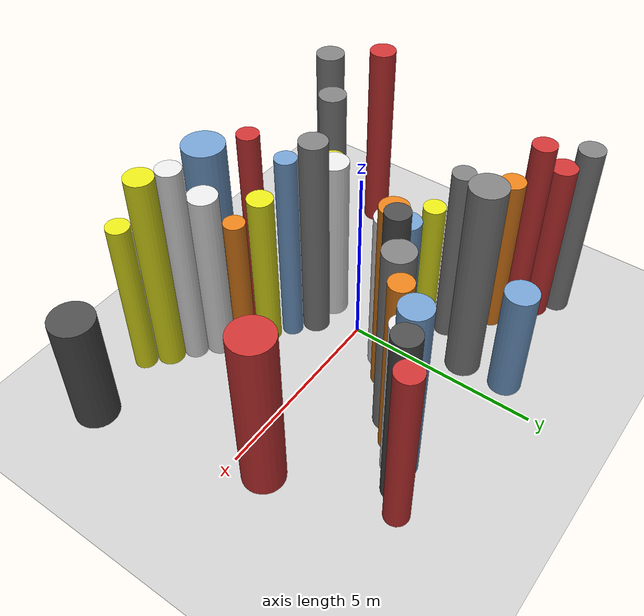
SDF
<?xml version='1.0'?>
<sdf version='1.6'>
  <world name='routeA_rl_v1__dense_recovery__rl_val__bottleneck_corridor__000029'>
    <!-- Sun light -->
    <light name='sun' type='directional'>
      <cast_shadows>1</cast_shadows>
      <pose>0 0 10 0 0 0</pose>
      <diffuse>0.8 0.8 0.8 1</diffuse>
      <specular>0.2 0.2 0.2 1</specular>
      <attenuation>
        <range>1000</range>
        <constant>0.9</constant>
        <linear>0.01</linear>
        <quadratic>0.001</quadratic>
      </attenuation>
      <direction>-0.5 0.1 -0.9</direction>
    </light>

    <!-- Ground plane -->
    <model name='ground_plane'>
      <static>1</static>
      <link name='link'>
        <collision name='collision'>
          <geometry>
            <plane>
              <normal>0 0 1</normal>
              <size>100 100</size>
            </plane>
          </geometry>
          <surface>
            <contact>
              <collide_bitmask>65535</collide_bitmask>
              <ode/>
            </contact>
            <friction>
              <ode>
                <mu>100</mu>
                <mu2>50</mu2>
              </ode>
              <torsional><ode/></torsional>
            </friction>
            <bounce/>
          </surface>
          <max_contacts>10</max_contacts>
        </collision>
        <visual name='visual'>
          <cast_shadows>0</cast_shadows>
          <geometry>
            <plane>
              <normal>0 0 1</normal>
              <size>100 100</size>
            </plane>
          </geometry>
          <material>
            <script>
              <uri>file://media/materials/scripts/gazebo.material</uri>
              <n>Gazebo/Grey</n>
            </script>
          </material>
        </visual>
      </link>
    </model>

    <!-- Environment -->
    <magnetic_field>6e-06 2.3e-05 -4.2e-05</magnetic_field>
    <atmosphere type='adiabatic'/>
    <physics name='default_physics' default='0' type='ode'>
      <gravity>0 0 -9.8</gravity>
      <max_step_size>0.004</max_step_size>
      <real_time_factor>1</real_time_factor>
      <real_time_update_rate>250</real_time_update_rate>
    </physics>
    <scene>
      <ambient>0.4 0.4 0.4 1</ambient>
      <background>0.7 0.7 0.7 1</background>
      <shadows>1</shadows>
    </scene>
    <wind/>
    <spherical_coordinates>
      <surface_model>EARTH_WGS84</surface_model>
      <latitude_deg>0</latitude_deg>
      <longitude_deg>0</longitude_deg>
      <elevation>0</elevation>
      <heading_deg>0</heading_deg>
    </spherical_coordinates>

    <!-- ============ OBSTACLES (40) ============ -->
    <model name='funnel_l_0'>
      <static>1</static>
      <link name='link'>
        <visual name='visual'>
          <geometry>
            <cylinder>
              <radius>0.2762</radius>
              <length>4.2920</length>
            </cylinder>
          </geometry>
          <material>
            <script>
              <n>Gazebo/DarkGrey</n>
              <uri>file://media/materials/scripts/gazebo.material</uri>
            </script>
            <ambient>0.3 0.3 0.3 1</ambient>
          </material>
        </visual>
        <collision name='collision'>
          <geometry>
            <cylinder>
              <radius>0.2762</radius>
              <length>4.2920</length>
            </cylinder>
          </geometry>
          <max_contacts>10</max_contacts>
          <surface>
            <contact><ode/></contact>
            <bounce/>
            <friction>
              <ode><mu>1</mu><mu2>1</mu2></ode>
              <torsional><ode/></torsional>
            </friction>
          </surface>
        </collision>
      </link>
      <pose>-4.0000 -3.8000 2.1460 0 0 0.0000</pose>
    </model>

    <model name='funnel_r_0'>
      <static>1</static>
      <link name='link'>
        <visual name='visual'>
          <geometry>
            <cylinder>
              <radius>0.3330</radius>
              <length>5.1272</length>
            </cylinder>
          </geometry>
          <material>
            <script>
              <n>Gazebo/Grey</n>
              <uri>file://media/materials/scripts/gazebo.material</uri>
            </script>
            <ambient>0.5 0.5 0.5 1</ambient>
          </material>
        </visual>
        <collision name='collision'>
          <geometry>
            <cylinder>
              <radius>0.3330</radius>
              <length>5.1272</length>
            </cylinder>
          </geometry>
          <max_contacts>10</max_contacts>
          <surface>
            <contact><ode/></contact>
            <bounce/>
            <friction>
              <ode><mu>1</mu><mu2>1</mu2></ode>
              <torsional><ode/></torsional>
            </friction>
          </surface>
        </collision>
      </link>
      <pose>-4.0000 3.8000 2.5636 0 0 0.0000</pose>
    </model>

    <model name='funnel_l_1'>
      <static>1</static>
      <link name='link'>
        <visual name='visual'>
          <geometry>
            <cylinder>
              <radius>0.2788</radius>
              <length>4.6956</length>
            </cylinder>
          </geometry>
          <material>
            <script>
              <n>Gazebo/Grey</n>
              <uri>file://media/materials/scripts/gazebo.material</uri>
            </script>
            <ambient>0.5 0.5 0.5 1</ambient>
          </material>
        </visual>
        <collision name='collision'>
          <geometry>
            <cylinder>
              <radius>0.2788</radius>
              <length>4.6956</length>
            </cylinder>
          </geometry>
          <max_contacts>10</max_contacts>
          <surface>
            <contact><ode/></contact>
            <bounce/>
            <friction>
              <ode><mu>1</mu><mu2>1</mu2></ode>
              <torsional><ode/></torsional>
            </friction>
          </surface>
        </collision>
      </link>
      <pose>-3.4857 -3.4071 2.3478 0 0 0.0000</pose>
    </model>

    <model name='funnel_r_1'>
      <static>1</static>
      <link name='link'>
        <visual name='visual'>
          <geometry>
            <cylinder>
              <radius>0.3372</radius>
              <length>4.7500</length>
            </cylinder>
          </geometry>
          <material>
            <script>
              <n>Gazebo/Red</n>
              <uri>file://media/materials/scripts/gazebo.material</uri>
            </script>
            <ambient>0.8 0.2 0.2 1</ambient>
          </material>
        </visual>
        <collision name='collision'>
          <geometry>
            <cylinder>
              <radius>0.3372</radius>
              <length>4.7500</length>
            </cylinder>
          </geometry>
          <max_contacts>10</max_contacts>
          <surface>
            <contact><ode/></contact>
            <bounce/>
            <friction>
              <ode><mu>1</mu><mu2>1</mu2></ode>
              <torsional><ode/></torsional>
            </friction>
          </surface>
        </collision>
      </link>
      <pose>-3.4857 3.4071 2.3750 0 0 0.0000</pose>
    </model>

    <model name='funnel_l_2'>
      <static>1</static>
      <link name='link'>
        <visual name='visual'>
          <geometry>
            <cylinder>
              <radius>0.3627</radius>
              <length>5.8204</length>
            </cylinder>
          </geometry>
          <material>
            <script>
              <n>Gazebo/Grey</n>
              <uri>file://media/materials/scripts/gazebo.material</uri>
            </script>
            <ambient>0.5 0.5 0.5 1</ambient>
          </material>
        </visual>
        <collision name='collision'>
          <geometry>
            <cylinder>
              <radius>0.3627</radius>
              <length>5.8204</length>
            </cylinder>
          </geometry>
          <max_contacts>10</max_contacts>
          <surface>
            <contact><ode/></contact>
            <bounce/>
            <friction>
              <ode><mu>1</mu><mu2>1</mu2></ode>
              <torsional><ode/></torsional>
            </friction>
          </surface>
        </collision>
      </link>
      <pose>-2.9714 -3.0143 2.9102 0 0 0.0000</pose>
    </model>

    <model name='funnel_r_2'>
      <static>1</static>
      <link name='link'>
        <visual name='visual'>
          <geometry>
            <cylinder>
              <radius>0.3050</radius>
              <length>5.5406</length>
            </cylinder>
          </geometry>
          <material>
            <script>
              <n>Gazebo/Red</n>
              <uri>file://media/materials/scripts/gazebo.material</uri>
            </script>
            <ambient>0.8 0.2 0.2 1</ambient>
          </material>
        </visual>
        <collision name='collision'>
          <geometry>
            <cylinder>
              <radius>0.3050</radius>
              <length>5.5406</length>
            </cylinder>
          </geometry>
          <max_contacts>10</max_contacts>
          <surface>
            <contact><ode/></contact>
            <bounce/>
            <friction>
              <ode><mu>1</mu><mu2>1</mu2></ode>
              <torsional><ode/></torsional>
            </friction>
          </surface>
        </collision>
      </link>
      <pose>-2.9714 3.0143 2.7703 0 0 0.0000</pose>
    </model>

    <model name='funnel_l_3'>
      <static>1</static>
      <link name='link'>
        <visual name='visual'>
          <geometry>
            <cylinder>
              <radius>0.3106</radius>
              <length>4.1900</length>
            </cylinder>
          </geometry>
          <material>
            <script>
              <n>Gazebo/Red</n>
              <uri>file://media/materials/scripts/gazebo.material</uri>
            </script>
            <ambient>0.8 0.2 0.2 1</ambient>
          </material>
        </visual>
        <collision name='collision'>
          <geometry>
            <cylinder>
              <radius>0.3106</radius>
              <length>4.1900</length>
            </cylinder>
          </geometry>
          <max_contacts>10</max_contacts>
          <surface>
            <contact><ode/></contact>
            <bounce/>
            <friction>
              <ode><mu>1</mu><mu2>1</mu2></ode>
              <torsional><ode/></torsional>
            </friction>
          </surface>
        </collision>
      </link>
      <pose>-2.4571 -2.6214 2.0950 0 0 0.0000</pose>
    </model>

    <model name='funnel_r_3'>
      <static>1</static>
      <link name='link'>
        <visual name='visual'>
          <geometry>
            <cylinder>
              <radius>0.3161</radius>
              <length>4.6233</length>
            </cylinder>
          </geometry>
          <material>
            <script>
              <n>Gazebo/Orange</n>
              <uri>file://media/materials/scripts/gazebo.material</uri>
            </script>
            <ambient>0.9 0.5 0.1 1</ambient>
          </material>
        </visual>
        <collision name='collision'>
          <geometry>
            <cylinder>
              <radius>0.3161</radius>
              <length>4.6233</length>
            </cylinder>
          </geometry>
          <max_contacts>10</max_contacts>
          <surface>
            <contact><ode/></contact>
            <bounce/>
            <friction>
              <ode><mu>1</mu><mu2>1</mu2></ode>
              <torsional><ode/></torsional>
            </friction>
          </surface>
        </collision>
      </link>
      <pose>-2.4571 2.6214 2.3117 0 0 0.0000</pose>
    </model>

    <model name='funnel_l_4'>
      <static>1</static>
      <link name='link'>
        <visual name='visual'>
          <geometry>
            <cylinder>
              <radius>0.2858</radius>
              <length>4.8805</length>
            </cylinder>
          </geometry>
          <material>
            <script>
              <n>Gazebo/Orange</n>
              <uri>file://media/materials/scripts/gazebo.material</uri>
            </script>
            <ambient>0.9 0.5 0.1 1</ambient>
          </material>
        </visual>
        <collision name='collision'>
          <geometry>
            <cylinder>
              <radius>0.2858</radius>
              <length>4.8805</length>
            </cylinder>
          </geometry>
          <max_contacts>10</max_contacts>
          <surface>
            <contact><ode/></contact>
            <bounce/>
            <friction>
              <ode><mu>1</mu><mu2>1</mu2></ode>
              <torsional><ode/></torsional>
            </friction>
          </surface>
        </collision>
      </link>
      <pose>-1.9429 -2.2286 2.4403 0 0 0.0000</pose>
    </model>

    <model name='funnel_r_4'>
      <static>1</static>
      <link name='link'>
        <visual name='visual'>
          <geometry>
            <cylinder>
              <radius>0.3298</radius>
              <length>4.4016</length>
            </cylinder>
          </geometry>
          <material>
            <script>
              <n>Gazebo/Red</n>
              <uri>file://media/materials/scripts/gazebo.material</uri>
            </script>
            <ambient>0.8 0.2 0.2 1</ambient>
          </material>
        </visual>
        <collision name='collision'>
          <geometry>
            <cylinder>
              <radius>0.3298</radius>
              <length>4.4016</length>
            </cylinder>
          </geometry>
          <max_contacts>10</max_contacts>
          <surface>
            <contact><ode/></contact>
            <bounce/>
            <friction>
              <ode><mu>1</mu><mu2>1</mu2></ode>
              <torsional><ode/></torsional>
            </friction>
          </surface>
        </collision>
      </link>
      <pose>-1.9429 2.2286 2.2008 0 0 0.0000</pose>
    </model>

    <model name='funnel_l_5'>
      <static>1</static>
      <link name='link'>
        <visual name='visual'>
          <geometry>
            <cylinder>
              <radius>0.3397</radius>
              <length>5.8529</length>
            </cylinder>
          </geometry>
          <material>
            <script>
              <n>Gazebo/Grey</n>
              <uri>file://media/materials/scripts/gazebo.material</uri>
            </script>
            <ambient>0.5 0.5 0.5 1</ambient>
          </material>
        </visual>
        <collision name='collision'>
          <geometry>
            <cylinder>
              <radius>0.3397</radius>
              <length>5.8529</length>
            </cylinder>
          </geometry>
          <max_contacts>10</max_contacts>
          <surface>
            <contact><ode/></contact>
            <bounce/>
            <friction>
              <ode><mu>1</mu><mu2>1</mu2></ode>
              <torsional><ode/></torsional>
            </friction>
          </surface>
        </collision>
      </link>
      <pose>-1.4286 -1.8357 2.9265 0 0 0.0000</pose>
    </model>

    <model name='funnel_r_5'>
      <static>1</static>
      <link name='link'>
        <visual name='visual'>
          <geometry>
            <cylinder>
              <radius>0.2864</radius>
              <length>5.1683</length>
            </cylinder>
          </geometry>
          <material>
            <script>
              <n>Gazebo/Grey</n>
              <uri>file://media/materials/scripts/gazebo.material</uri>
            </script>
            <ambient>0.5 0.5 0.5 1</ambient>
          </material>
        </visual>
        <collision name='collision'>
          <geometry>
            <cylinder>
              <radius>0.2864</radius>
              <length>5.1683</length>
            </cylinder>
          </geometry>
          <max_contacts>10</max_contacts>
          <surface>
            <contact><ode/></contact>
            <bounce/>
            <friction>
              <ode><mu>1</mu><mu2>1</mu2></ode>
              <torsional><ode/></torsional>
            </friction>
          </surface>
        </collision>
      </link>
      <pose>-1.4286 1.8357 2.5842 0 0 0.0000</pose>
    </model>

    <model name='funnel_l_6'>
      <static>1</static>
      <link name='link'>
        <visual name='visual'>
          <geometry>
            <cylinder>
              <radius>0.2945</radius>
              <length>4.4766</length>
            </cylinder>
          </geometry>
          <material>
            <script>
              <n>Gazebo/Yellow</n>
              <uri>file://media/materials/scripts/gazebo.material</uri>
            </script>
            <ambient>0.9 0.9 0.1 1</ambient>
          </material>
        </visual>
        <collision name='collision'>
          <geometry>
            <cylinder>
              <radius>0.2945</radius>
              <length>4.4766</length>
            </cylinder>
          </geometry>
          <max_contacts>10</max_contacts>
          <surface>
            <contact><ode/></contact>
            <bounce/>
            <friction>
              <ode><mu>1</mu><mu2>1</mu2></ode>
              <torsional><ode/></torsional>
            </friction>
          </surface>
        </collision>
      </link>
      <pose>-0.9143 -1.4429 2.2383 0 0 0.0000</pose>
    </model>

    <model name='funnel_r_6'>
      <static>1</static>
      <link name='link'>
        <visual name='visual'>
          <geometry>
            <cylinder>
              <radius>0.2733</radius>
              <length>4.3314</length>
            </cylinder>
          </geometry>
          <material>
            <script>
              <n>Gazebo/Yellow</n>
              <uri>file://media/materials/scripts/gazebo.material</uri>
            </script>
            <ambient>0.9 0.9 0.1 1</ambient>
          </material>
        </visual>
        <collision name='collision'>
          <geometry>
            <cylinder>
              <radius>0.2733</radius>
              <length>4.3314</length>
            </cylinder>
          </geometry>
          <max_contacts>10</max_contacts>
          <surface>
            <contact><ode/></contact>
            <bounce/>
            <friction>
              <ode><mu>1</mu><mu2>1</mu2></ode>
              <torsional><ode/></torsional>
            </friction>
          </surface>
        </collision>
      </link>
      <pose>-0.9143 1.4429 2.1657 0 0 0.0000</pose>
    </model>

    <model name='funnel_l_7'>
      <static>1</static>
      <link name='link'>
        <visual name='visual'>
          <geometry>
            <cylinder>
              <radius>0.3696</radius>
              <length>4.8491</length>
            </cylinder>
          </geometry>
          <material>
            <script>
              <n>Gazebo/White</n>
              <uri>file://media/materials/scripts/gazebo.material</uri>
            </script>
            <ambient>0.9 0.9 0.9 1</ambient>
          </material>
        </visual>
        <collision name='collision'>
          <geometry>
            <cylinder>
              <radius>0.3696</radius>
              <length>4.8491</length>
            </cylinder>
          </geometry>
          <max_contacts>10</max_contacts>
          <surface>
            <contact><ode/></contact>
            <bounce/>
            <friction>
              <ode><mu>1</mu><mu2>1</mu2></ode>
              <torsional><ode/></torsional>
            </friction>
          </surface>
        </collision>
      </link>
      <pose>-0.4000 -1.0500 2.4245 0 0 0.0000</pose>
    </model>

    <model name='funnel_r_7'>
      <static>1</static>
      <link name='link'>
        <visual name='visual'>
          <geometry>
            <cylinder>
              <radius>0.3474</radius>
              <length>4.0606</length>
            </cylinder>
          </geometry>
          <material>
            <script>
              <n>Gazebo/Blue</n>
              <uri>file://media/materials/scripts/gazebo.material</uri>
            </script>
            <ambient>0.447 0.624 0.812 1</ambient>
          </material>
        </visual>
        <collision name='collision'>
          <geometry>
            <cylinder>
              <radius>0.3474</radius>
              <length>4.0606</length>
            </cylinder>
          </geometry>
          <max_contacts>10</max_contacts>
          <surface>
            <contact><ode/></contact>
            <bounce/>
            <friction>
              <ode><mu>1</mu><mu2>1</mu2></ode>
              <torsional><ode/></torsional>
            </friction>
          </surface>
        </collision>
      </link>
      <pose>-0.4000 1.0500 2.0303 0 0 0.0000</pose>
    </model>

    <model name='funnel_out_l_0'>
      <static>1</static>
      <link name='link'>
        <visual name='visual'>
          <geometry>
            <cylinder>
              <radius>0.3497</radius>
              <length>5.9043</length>
            </cylinder>
          </geometry>
          <material>
            <script>
              <n>Gazebo/Grey</n>
              <uri>file://media/materials/scripts/gazebo.material</uri>
            </script>
            <ambient>0.5 0.5 0.5 1</ambient>
          </material>
        </visual>
        <collision name='collision'>
          <geometry>
            <cylinder>
              <radius>0.3497</radius>
              <length>5.9043</length>
            </cylinder>
          </geometry>
          <max_contacts>10</max_contacts>
          <surface>
            <contact><ode/></contact>
            <bounce/>
            <friction>
              <ode><mu>1</mu><mu2>1</mu2></ode>
              <torsional><ode/></torsional>
            </friction>
          </surface>
        </collision>
      </link>
      <pose>0.4000 -1.0500 2.9521 0 0 0.0000</pose>
    </model>

    <model name='funnel_out_r_0'>
      <static>1</static>
      <link name='link'>
        <visual name='visual'>
          <geometry>
            <cylinder>
              <radius>0.3787</radius>
              <length>4.7366</length>
            </cylinder>
          </geometry>
          <material>
            <script>
              <n>Gazebo/White</n>
              <uri>file://media/materials/scripts/gazebo.material</uri>
            </script>
            <ambient>0.9 0.9 0.9 1</ambient>
          </material>
        </visual>
        <collision name='collision'>
          <geometry>
            <cylinder>
              <radius>0.3787</radius>
              <length>4.7366</length>
            </cylinder>
          </geometry>
          <max_contacts>10</max_contacts>
          <surface>
            <contact><ode/></contact>
            <bounce/>
            <friction>
              <ode><mu>1</mu><mu2>1</mu2></ode>
              <torsional><ode/></torsional>
            </friction>
          </surface>
        </collision>
      </link>
      <pose>0.4000 1.0500 2.3683 0 0 0.0000</pose>
    </model>

    <model name='funnel_out_l_1'>
      <static>1</static>
      <link name='link'>
        <visual name='visual'>
          <geometry>
            <cylinder>
              <radius>0.2704</radius>
              <length>5.5820</length>
            </cylinder>
          </geometry>
          <material>
            <script>
              <n>Gazebo/Blue</n>
              <uri>file://media/materials/scripts/gazebo.material</uri>
            </script>
            <ambient>0.447 0.624 0.812 1</ambient>
          </material>
        </visual>
        <collision name='collision'>
          <geometry>
            <cylinder>
              <radius>0.2704</radius>
              <length>5.5820</length>
            </cylinder>
          </geometry>
          <max_contacts>10</max_contacts>
          <surface>
            <contact><ode/></contact>
            <bounce/>
            <friction>
              <ode><mu>1</mu><mu2>1</mu2></ode>
              <torsional><ode/></torsional>
            </friction>
          </surface>
        </collision>
      </link>
      <pose>0.9143 -1.4429 2.7910 0 0 0.0000</pose>
    </model>

    <model name='funnel_out_r_1'>
      <static>1</static>
      <link name='link'>
        <visual name='visual'>
          <geometry>
            <cylinder>
              <radius>0.3410</radius>
              <length>5.5845</length>
            </cylinder>
          </geometry>
          <material>
            <script>
              <n>Gazebo/Orange</n>
              <uri>file://media/materials/scripts/gazebo.material</uri>
            </script>
            <ambient>0.9 0.5 0.1 1</ambient>
          </material>
        </visual>
        <collision name='collision'>
          <geometry>
            <cylinder>
              <radius>0.3410</radius>
              <length>5.5845</length>
            </cylinder>
          </geometry>
          <max_contacts>10</max_contacts>
          <surface>
            <contact><ode/></contact>
            <bounce/>
            <friction>
              <ode><mu>1</mu><mu2>1</mu2></ode>
              <torsional><ode/></torsional>
            </friction>
          </surface>
        </collision>
      </link>
      <pose>0.9143 1.4429 2.7923 0 0 0.0000</pose>
    </model>

    <model name='funnel_out_l_2'>
      <static>1</static>
      <link name='link'>
        <visual name='visual'>
          <geometry>
            <cylinder>
              <radius>0.3218</radius>
              <length>4.5643</length>
            </cylinder>
          </geometry>
          <material>
            <script>
              <n>Gazebo/Yellow</n>
              <uri>file://media/materials/scripts/gazebo.material</uri>
            </script>
            <ambient>0.9 0.9 0.1 1</ambient>
          </material>
        </visual>
        <collision name='collision'>
          <geometry>
            <cylinder>
              <radius>0.3218</radius>
              <length>4.5643</length>
            </cylinder>
          </geometry>
          <max_contacts>10</max_contacts>
          <surface>
            <contact><ode/></contact>
            <bounce/>
            <friction>
              <ode><mu>1</mu><mu2>1</mu2></ode>
              <torsional><ode/></torsional>
            </friction>
          </surface>
        </collision>
      </link>
      <pose>1.4286 -1.8357 2.2822 0 0 0.0000</pose>
    </model>

    <model name='funnel_out_r_2'>
      <static>1</static>
      <link name='link'>
        <visual name='visual'>
          <geometry>
            <cylinder>
              <radius>0.2916</radius>
              <length>5.9943</length>
            </cylinder>
          </geometry>
          <material>
            <script>
              <n>Gazebo/DarkGrey</n>
              <uri>file://media/materials/scripts/gazebo.material</uri>
            </script>
            <ambient>0.3 0.3 0.3 1</ambient>
          </material>
        </visual>
        <collision name='collision'>
          <geometry>
            <cylinder>
              <radius>0.2916</radius>
              <length>5.9943</length>
            </cylinder>
          </geometry>
          <max_contacts>10</max_contacts>
          <surface>
            <contact><ode/></contact>
            <bounce/>
            <friction>
              <ode><mu>1</mu><mu2>1</mu2></ode>
              <torsional><ode/></torsional>
            </friction>
          </surface>
        </collision>
      </link>
      <pose>1.4286 1.8357 2.9971 0 0 0.0000</pose>
    </model>

    <model name='funnel_out_l_3'>
      <static>1</static>
      <link name='link'>
        <visual name='visual'>
          <geometry>
            <cylinder>
              <radius>0.2723</radius>
              <length>4.0008</length>
            </cylinder>
          </geometry>
          <material>
            <script>
              <n>Gazebo/Orange</n>
              <uri>file://media/materials/scripts/gazebo.material</uri>
            </script>
            <ambient>0.9 0.5 0.1 1</ambient>
          </material>
        </visual>
        <collision name='collision'>
          <geometry>
            <cylinder>
              <radius>0.2723</radius>
              <length>4.0008</length>
            </cylinder>
          </geometry>
          <max_contacts>10</max_contacts>
          <surface>
            <contact><ode/></contact>
            <bounce/>
            <friction>
              <ode><mu>1</mu><mu2>1</mu2></ode>
              <torsional><ode/></torsional>
            </friction>
          </surface>
        </collision>
      </link>
      <pose>1.9429 -2.2286 2.0004 0 0 0.0000</pose>
    </model>

    <model name='funnel_out_r_3'>
      <static>1</static>
      <link name='link'>
        <visual name='visual'>
          <geometry>
            <cylinder>
              <radius>0.3750</radius>
              <length>5.5162</length>
            </cylinder>
          </geometry>
          <material>
            <script>
              <n>Gazebo/Grey</n>
              <uri>file://media/materials/scripts/gazebo.material</uri>
            </script>
            <ambient>0.5 0.5 0.5 1</ambient>
          </material>
        </visual>
        <collision name='collision'>
          <geometry>
            <cylinder>
              <radius>0.3750</radius>
              <length>5.5162</length>
            </cylinder>
          </geometry>
          <max_contacts>10</max_contacts>
          <surface>
            <contact><ode/></contact>
            <bounce/>
            <friction>
              <ode><mu>1</mu><mu2>1</mu2></ode>
              <torsional><ode/></torsional>
            </friction>
          </surface>
        </collision>
      </link>
      <pose>1.9429 2.2286 2.7581 0 0 0.0000</pose>
    </model>

    <model name='funnel_out_l_4'>
      <static>1</static>
      <link name='link'>
        <visual name='visual'>
          <geometry>
            <cylinder>
              <radius>0.3671</radius>
              <length>4.9653</length>
            </cylinder>
          </geometry>
          <material>
            <script>
              <n>Gazebo/White</n>
              <uri>file://media/materials/scripts/gazebo.material</uri>
            </script>
            <ambient>0.9 0.9 0.9 1</ambient>
          </material>
        </visual>
        <collision name='collision'>
          <geometry>
            <cylinder>
              <radius>0.3671</radius>
              <length>4.9653</length>
            </cylinder>
          </geometry>
          <max_contacts>10</max_contacts>
          <surface>
            <contact><ode/></contact>
            <bounce/>
            <friction>
              <ode><mu>1</mu><mu2>1</mu2></ode>
              <torsional><ode/></torsional>
            </friction>
          </surface>
        </collision>
      </link>
      <pose>2.4571 -2.6214 2.4827 0 0 0.0000</pose>
    </model>

    <model name='funnel_out_r_4'>
      <static>1</static>
      <link name='link'>
        <visual name='visual'>
          <geometry>
            <cylinder>
              <radius>0.2857</radius>
              <length>5.2803</length>
            </cylinder>
          </geometry>
          <material>
            <script>
              <n>Gazebo/Orange</n>
              <uri>file://media/materials/scripts/gazebo.material</uri>
            </script>
            <ambient>0.9 0.5 0.1 1</ambient>
          </material>
        </visual>
        <collision name='collision'>
          <geometry>
            <cylinder>
              <radius>0.2857</radius>
              <length>5.2803</length>
            </cylinder>
          </geometry>
          <max_contacts>10</max_contacts>
          <surface>
            <contact><ode/></contact>
            <bounce/>
            <friction>
              <ode><mu>1</mu><mu2>1</mu2></ode>
              <torsional><ode/></torsional>
            </friction>
          </surface>
        </collision>
      </link>
      <pose>2.4571 2.6214 2.6402 0 0 0.0000</pose>
    </model>

    <model name='funnel_out_l_5'>
      <static>1</static>
      <link name='link'>
        <visual name='visual'>
          <geometry>
            <cylinder>
              <radius>0.3056</radius>
              <length>5.8620</length>
            </cylinder>
          </geometry>
          <material>
            <script>
              <n>Gazebo/White</n>
              <uri>file://media/materials/scripts/gazebo.material</uri>
            </script>
            <ambient>0.9 0.9 0.9 1</ambient>
          </material>
        </visual>
        <collision name='collision'>
          <geometry>
            <cylinder>
              <radius>0.3056</radius>
              <length>5.8620</length>
            </cylinder>
          </geometry>
          <max_contacts>10</max_contacts>
          <surface>
            <contact><ode/></contact>
            <bounce/>
            <friction>
              <ode><mu>1</mu><mu2>1</mu2></ode>
              <torsional><ode/></torsional>
            </friction>
          </surface>
        </collision>
      </link>
      <pose>2.9714 -3.0143 2.9310 0 0 0.0000</pose>
    </model>

    <model name='funnel_out_r_5'>
      <static>1</static>
      <link name='link'>
        <visual name='visual'>
          <geometry>
            <cylinder>
              <radius>0.2881</radius>
              <length>4.7831</length>
            </cylinder>
          </geometry>
          <material>
            <script>
              <n>Gazebo/White</n>
              <uri>file://media/materials/scripts/gazebo.material</uri>
            </script>
            <ambient>0.9 0.9 0.9 1</ambient>
          </material>
        </visual>
        <collision name='collision'>
          <geometry>
            <cylinder>
              <radius>0.2881</radius>
              <length>4.7831</length>
            </cylinder>
          </geometry>
          <max_contacts>10</max_contacts>
          <surface>
            <contact><ode/></contact>
            <bounce/>
            <friction>
              <ode><mu>1</mu><mu2>1</mu2></ode>
              <torsional><ode/></torsional>
            </friction>
          </surface>
        </collision>
      </link>
      <pose>2.9714 3.0143 2.3915 0 0 0.0000</pose>
    </model>

    <model name='funnel_out_l_6'>
      <static>1</static>
      <link name='link'>
        <visual name='visual'>
          <geometry>
            <cylinder>
              <radius>0.3507</radius>
              <length>5.7772</length>
            </cylinder>
          </geometry>
          <material>
            <script>
              <n>Gazebo/Yellow</n>
              <uri>file://media/materials/scripts/gazebo.material</uri>
            </script>
            <ambient>0.9 0.9 0.1 1</ambient>
          </material>
        </visual>
        <collision name='collision'>
          <geometry>
            <cylinder>
              <radius>0.3507</radius>
              <length>5.7772</length>
            </cylinder>
          </geometry>
          <max_contacts>10</max_contacts>
          <surface>
            <contact><ode/></contact>
            <bounce/>
            <friction>
              <ode><mu>1</mu><mu2>1</mu2></ode>
              <torsional><ode/></torsional>
            </friction>
          </surface>
        </collision>
      </link>
      <pose>3.4857 -3.4071 2.8886 0 0 0.0000</pose>
    </model>

    <model name='funnel_out_r_6'>
      <static>1</static>
      <link name='link'>
        <visual name='visual'>
          <geometry>
            <cylinder>
              <radius>0.3262</radius>
              <length>5.2048</length>
            </cylinder>
          </geometry>
          <material>
            <script>
              <n>Gazebo/DarkGrey</n>
              <uri>file://media/materials/scripts/gazebo.material</uri>
            </script>
            <ambient>0.3 0.3 0.3 1</ambient>
          </material>
        </visual>
        <collision name='collision'>
          <geometry>
            <cylinder>
              <radius>0.3262</radius>
              <length>5.2048</length>
            </cylinder>
          </geometry>
          <max_contacts>10</max_contacts>
          <surface>
            <contact><ode/></contact>
            <bounce/>
            <friction>
              <ode><mu>1</mu><mu2>1</mu2></ode>
              <torsional><ode/></torsional>
            </friction>
          </surface>
        </collision>
      </link>
      <pose>3.4857 3.4071 2.6024 0 0 0.0000</pose>
    </model>

    <model name='funnel_out_l_7'>
      <static>1</static>
      <link name='link'>
        <visual name='visual'>
          <geometry>
            <cylinder>
              <radius>0.2877</radius>
              <length>4.5482</length>
            </cylinder>
          </geometry>
          <material>
            <script>
              <n>Gazebo/Yellow</n>
              <uri>file://media/materials/scripts/gazebo.material</uri>
            </script>
            <ambient>0.9 0.9 0.1 1</ambient>
          </material>
        </visual>
        <collision name='collision'>
          <geometry>
            <cylinder>
              <radius>0.2877</radius>
              <length>4.5482</length>
            </cylinder>
          </geometry>
          <max_contacts>10</max_contacts>
          <surface>
            <contact><ode/></contact>
            <bounce/>
            <friction>
              <ode><mu>1</mu><mu2>1</mu2></ode>
              <torsional><ode/></torsional>
            </friction>
          </surface>
        </collision>
      </link>
      <pose>4.0000 -3.8000 2.2741 0 0 0.0000</pose>
    </model>

    <model name='funnel_out_r_7'>
      <static>1</static>
      <link name='link'>
        <visual name='visual'>
          <geometry>
            <cylinder>
              <radius>0.3133</radius>
              <length>4.9260</length>
            </cylinder>
          </geometry>
          <material>
            <script>
              <n>Gazebo/Red</n>
              <uri>file://media/materials/scripts/gazebo.material</uri>
            </script>
            <ambient>0.8 0.2 0.2 1</ambient>
          </material>
        </visual>
        <collision name='collision'>
          <geometry>
            <cylinder>
              <radius>0.3133</radius>
              <length>4.9260</length>
            </cylinder>
          </geometry>
          <max_contacts>10</max_contacts>
          <surface>
            <contact><ode/></contact>
            <bounce/>
            <friction>
              <ode><mu>1</mu><mu2>1</mu2></ode>
              <torsional><ode/></torsional>
            </friction>
          </surface>
        </collision>
      </link>
      <pose>4.0000 3.8000 2.4630 0 0 0.0000</pose>
    </model>

    <model name='bn_scatter_0'>
      <static>1</static>
      <link name='link'>
        <visual name='visual'>
          <geometry>
            <cylinder>
              <radius>0.5414</radius>
              <length>5.1412</length>
            </cylinder>
          </geometry>
          <material>
            <script>
              <n>Gazebo/Blue</n>
              <uri>file://media/materials/scripts/gazebo.material</uri>
            </script>
            <ambient>0.447 0.624 0.812 1</ambient>
          </material>
        </visual>
        <collision name='collision'>
          <geometry>
            <cylinder>
              <radius>0.5414</radius>
              <length>5.1412</length>
            </cylinder>
          </geometry>
          <max_contacts>10</max_contacts>
          <surface>
            <contact><ode/></contact>
            <bounce/>
            <friction>
              <ode><mu>1</mu><mu2>1</mu2></ode>
              <torsional><ode/></torsional>
            </friction>
          </surface>
        </collision>
      </link>
      <pose>1.1671 -3.7255 2.5706 0 0 0.0000</pose>
    </model>

    <model name='bn_scatter_1'>
      <static>1</static>
      <link name='link'>
        <visual name='visual'>
          <geometry>
            <cylinder>
              <radius>0.2747</radius>
              <length>5.8025</length>
            </cylinder>
          </geometry>
          <material>
            <script>
              <n>Gazebo/Red</n>
              <uri>file://media/materials/scripts/gazebo.material</uri>
            </script>
            <ambient>0.8 0.2 0.2 1</ambient>
          </material>
        </visual>
        <collision name='collision'>
          <geometry>
            <cylinder>
              <radius>0.2747</radius>
              <length>5.8025</length>
            </cylinder>
          </geometry>
          <max_contacts>10</max_contacts>
          <surface>
            <contact><ode/></contact>
            <bounce/>
            <friction>
              <ode><mu>1</mu><mu2>1</mu2></ode>
              <torsional><ode/></torsional>
            </friction>
          </surface>
        </collision>
      </link>
      <pose>0.9239 -2.5059 2.9013 0 0 0.0000</pose>
    </model>

    <model name='bn_scatter_2'>
      <static>1</static>
      <link name='link'>
        <visual name='visual'>
          <geometry>
            <cylinder>
              <radius>0.4508</radius>
              <length>5.7581</length>
            </cylinder>
          </geometry>
          <material>
            <script>
              <n>Gazebo/Grey</n>
              <uri>file://media/materials/scripts/gazebo.material</uri>
            </script>
            <ambient>0.5 0.5 0.5 1</ambient>
          </material>
        </visual>
        <collision name='collision'>
          <geometry>
            <cylinder>
              <radius>0.4508</radius>
              <length>5.7581</length>
            </cylinder>
          </geometry>
          <max_contacts>10</max_contacts>
          <surface>
            <contact><ode/></contact>
            <bounce/>
            <friction>
              <ode><mu>1</mu><mu2>1</mu2></ode>
              <torsional><ode/></torsional>
            </friction>
          </surface>
        </collision>
      </link>
      <pose>-0.6409 2.8148 2.8791 0 0 0.0000</pose>
    </model>

    <model name='bn_scatter_3'>
      <static>1</static>
      <link name='link'>
        <visual name='visual'>
          <geometry>
            <cylinder>
              <radius>0.5312</radius>
              <length>4.7800</length>
            </cylinder>
          </geometry>
          <material>
            <script>
              <n>Gazebo/Red</n>
              <uri>file://media/materials/scripts/gazebo.material</uri>
            </script>
            <ambient>0.8 0.2 0.2 1</ambient>
          </material>
        </visual>
        <collision name='collision'>
          <geometry>
            <cylinder>
              <radius>0.5312</radius>
              <length>4.7800</length>
            </cylinder>
          </geometry>
          <max_contacts>10</max_contacts>
          <surface>
            <contact><ode/></contact>
            <bounce/>
            <friction>
              <ode><mu>1</mu><mu2>1</mu2></ode>
              <torsional><ode/></torsional>
            </friction>
          </surface>
        </collision>
      </link>
      <pose>4.9013 0.7892 2.3900 0 0 0.0000</pose>
    </model>

    <model name='bn_scatter_4'>
      <static>1</static>
      <link name='link'>
        <visual name='visual'>
          <geometry>
            <cylinder>
              <radius>0.5528</radius>
              <length>3.2508</length>
            </cylinder>
          </geometry>
          <material>
            <script>
              <n>Gazebo/DarkGrey</n>
              <uri>file://media/materials/scripts/gazebo.material</uri>
            </script>
            <ambient>0.3 0.3 0.3 1</ambient>
          </material>
        </visual>
        <collision name='collision'>
          <geometry>
            <cylinder>
              <radius>0.5528</radius>
              <length>3.2508</length>
            </cylinder>
          </geometry>
          <max_contacts>10</max_contacts>
          <surface>
            <contact><ode/></contact>
            <bounce/>
            <friction>
              <ode><mu>1</mu><mu2>1</mu2></ode>
              <torsional><ode/></torsional>
            </friction>
          </surface>
        </collision>
      </link>
      <pose>5.8468 -3.6385 1.6254 0 0 0.0000</pose>
    </model>

    <model name='bn_scatter_5'>
      <static>1</static>
      <link name='link'>
        <visual name='visual'>
          <geometry>
            <cylinder>
              <radius>0.3762</radius>
              <length>5.2810</length>
            </cylinder>
          </geometry>
          <material>
            <script>
              <n>Gazebo/Blue</n>
              <uri>file://media/materials/scripts/gazebo.material</uri>
            </script>
            <ambient>0.447 0.624 0.812 1</ambient>
          </material>
        </visual>
        <collision name='collision'>
          <geometry>
            <cylinder>
              <radius>0.3762</radius>
              <length>5.2810</length>
            </cylinder>
          </geometry>
          <max_contacts>10</max_contacts>
          <surface>
            <contact><ode/></contact>
            <bounce/>
            <friction>
              <ode><mu>1</mu><mu2>1</mu2></ode>
              <torsional><ode/></torsional>
            </friction>
          </surface>
        </collision>
      </link>
      <pose>2.8398 3.2038 2.6405 0 0 0.0000</pose>
    </model>

    <model name='bn_scatter_6'>
      <static>1</static>
      <link name='link'>
        <visual name='visual'>
          <geometry>
            <cylinder>
              <radius>0.3487</radius>
              <length>5.5505</length>
            </cylinder>
          </geometry>
          <material>
            <script>
              <n>Gazebo/Red</n>
              <uri>file://media/materials/scripts/gazebo.material</uri>
            </script>
            <ambient>0.8 0.2 0.2 1</ambient>
          </material>
        </visual>
        <collision name='collision'>
          <geometry>
            <cylinder>
              <radius>0.3487</radius>
              <length>5.5505</length>
            </cylinder>
          </geometry>
          <max_contacts>10</max_contacts>
          <surface>
            <contact><ode/></contact>
            <bounce/>
            <friction>
              <ode><mu>1</mu><mu2>1</mu2></ode>
              <torsional><ode/></torsional>
            </friction>
          </surface>
        </collision>
      </link>
      <pose>-4.2688 -2.2531 2.7753 0 0 0.0000</pose>
    </model>

    <model name='bn_scatter_7'>
      <static>1</static>
      <link name='link'>
        <visual name='visual'>
          <geometry>
            <cylinder>
              <radius>0.4183</radius>
              <length>3.2052</length>
            </cylinder>
          </geometry>
          <material>
            <script>
              <n>Gazebo/Blue</n>
              <uri>file://media/materials/scripts/gazebo.material</uri>
            </script>
            <ambient>0.447 0.624 0.812 1</ambient>
          </material>
        </visual>
        <collision name='collision'>
          <geometry>
            <cylinder>
              <radius>0.4183</radius>
              <length>3.2052</length>
            </cylinder>
          </geometry>
          <max_contacts>10</max_contacts>
          <surface>
            <contact><ode/></contact>
            <bounce/>
            <friction>
              <ode><mu>1</mu><mu2>1</mu2></ode>
              <torsional><ode/></torsional>
            </friction>
          </surface>
        </collision>
      </link>
      <pose>-0.6840 3.9855 1.6026 0 0 0.0000</pose>
    </model>

    <!-- GUI camera -->
    <gui fullscreen='0'>
      <camera name='user_camera'>
        <pose>-15 0 18 0 0.85 0.15</pose>
        <view_controller>orbit</view_controller>
        <projection_type>perspective</projection_type>
      </camera>
    </gui>
  </world>
</sdf>
